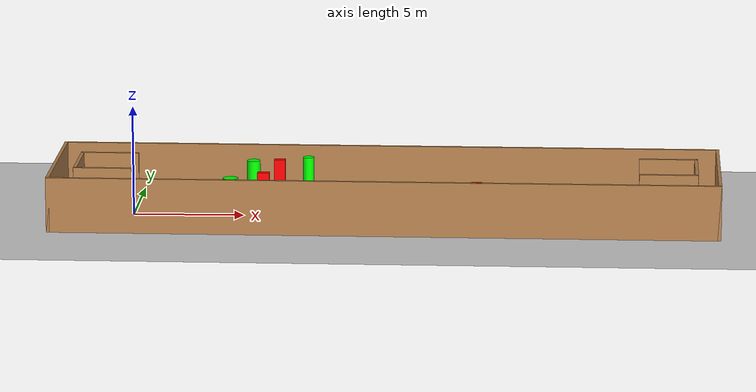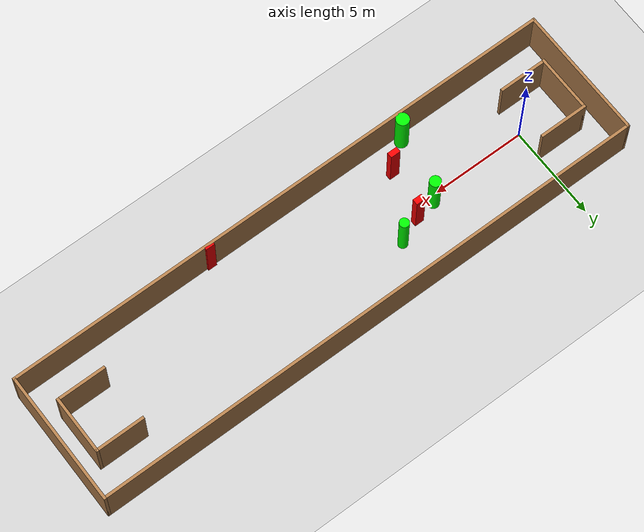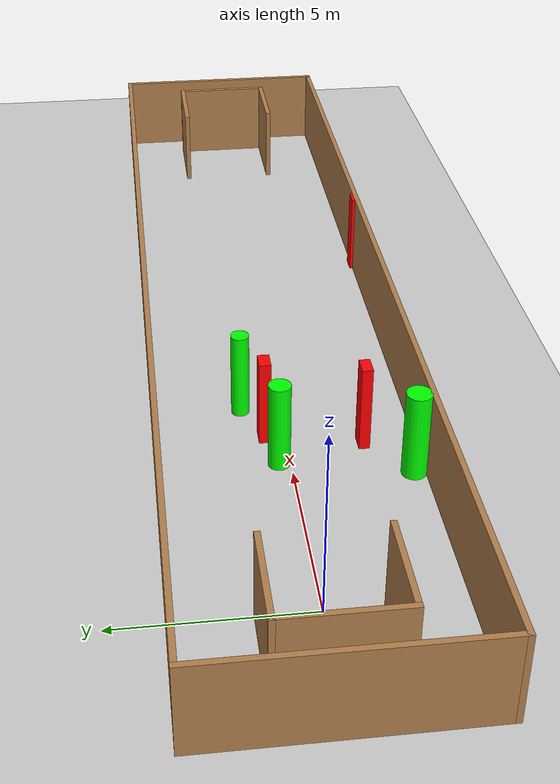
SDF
<sdf version="1.7">
 <world name="default">
  <light name="sun" type="directional">
   <pose>0 0 10 0 -0 0</pose>
   <diffuse>0.8 0.8 0.8 1</diffuse>
   <specular>0.2 0.2 0.2 1</specular>
   <attenuation>
    <range>1000</range>
    <constant>0.9</constant>
    <linear>0.01</linear>
    <quadratic>0.001</quadratic>
   </attenuation>
   <direction>-0.5 0.1 -0.9</direction>
   <spot><inner_angle>0</inner_angle><outer_angle>0</outer_angle><falloff>0</falloff></spot>
  </light>
  <model name="ground_plane">
   <static>1</static>
   <link name="link">
    <collision name="collision">
     <geometry><plane><normal>0 0 1</normal><size>100 100</size></plane></geometry>
     <surface>
      <contact><collide_bitmask>65535</collide_bitmask></contact>
      <friction><ode><mu>100</mu><mu2>50</mu2></ode></friction>
     </surface>
    </collision>
    <visual name="visual">
     <cast_shadows>0</cast_shadows>
     <geometry><plane><normal>0 0 1</normal><size>100 100</size></plane></geometry>
     <material>
      <script><uri>file://media/materials/scripts/gazebo.material</uri><name>Gazebo/Grey</name></script>
     </material>
    </visual>
   </link>
  </model>
  <gravity>0 0 -9.8</gravity>
  <magnetic_field>6e-06 2.3e-05 -4.2e-05</magnetic_field>
  <atmosphere type="adiabatic"/>
  <physics type="ode">
   <max_step_size>0.001</max_step_size>
   <real_time_factor>1</real_time_factor>
   <real_time_update_rate>1000</real_time_update_rate>
  </physics>
  <scene><ambient>0.4 0.4 0.4 1</ambient><background>0.7 0.7 0.7 1</background><shadows>1</shadows></scene>
  <spherical_coordinates>
   <surface_model>EARTH_WGS84</surface_model>
   <latitude_deg>0</latitude_deg>
   <longitude_deg>0</longitude_deg>
   <elevation>0</elevation>
   <heading_deg>0</heading_deg>
  </spherical_coordinates>
  <model name="my_base_walls">
   <link name="Wall_0">
    <collision name="Wall_0_Collision">
     <geometry><box><size>7.15 0.15 2.5</size></box></geometry>
     <pose>0 0 1.25 0 -0 0</pose>
    </collision>
    <visual name="Wall_0_Visual">
     <pose>0 0 1.25 0 -0 0</pose>
     <geometry><box><size>7.15 0.15 2.5</size></box></geometry>
     <material>
      <script><uri>file://media/materials/scripts/gazebo.material</uri><name>Gazebo/Wood</name></script>
      <ambient>1 1 1 1</ambient>
     </material>
     <meta><layer>0</layer></meta>
    </visual>
    <pose>-15 0 0 0 -0 1.5708</pose>
   </link>
   <link name="Wall_10">
    <collision name="Wall_10_Collision">
     <geometry><box><size>2.65 0.15 2.5</size></box></geometry>
     <pose>0 0 1.25 0 -0 0</pose>
    </collision>
    <visual name="Wall_10_Visual">
     <pose>0 0 1.25 0 -0 0</pose>
     <geometry><box><size>2.65 0.15 2.5</size></box></geometry>
     <material>
      <script><uri>file://media/materials/scripts/gazebo.material</uri><name>Gazebo/Wood</name></script>
      <ambient>1 1 1 1</ambient>
     </material>
     <meta><layer>0</layer></meta>
    </visual>
    <pose>-12.75 -1.5 0 0 -0 0</pose>
   </link>
   <link name="Wall_12">
    <collision name="Wall_12_Collision">
     <geometry><box><size>2.65 0.15 2.5</size></box></geometry>
     <pose>0 0 1.25 0 -0 0</pose>
    </collision>
    <visual name="Wall_12_Visual">
     <pose>0 0 1.25 0 -0 0</pose>
     <geometry><box><size>2.65 0.15 2.5</size></box></geometry>
     <material>
      <script><uri>file://media/materials/scripts/gazebo.material</uri><name>Gazebo/Wood</name></script>
      <ambient>1 1 1 1</ambient>
     </material>
     <meta><layer>0</layer></meta>
    </visual>
    <pose>-12.75 1.5 0 0 -0 0</pose>
   </link>
   <link name="Wall_14">
    <collision name="Wall_14_Collision">
     <geometry><box><size>3.15 0.15 2.5</size></box></geometry>
     <pose>0 0 1.25 0 -0 0</pose>
    </collision>
    <visual name="Wall_14_Visual">
     <pose>0 0 1.25 0 -0 0</pose>
     <geometry><box><size>3.15 0.15 2.5</size></box></geometry>
     <material>
      <script><uri>file://media/materials/scripts/gazebo.material</uri><name>Gazebo/Wood</name></script>
      <ambient>1 1 1 1</ambient>
     </material>
     <meta><layer>0</layer></meta>
    </visual>
    <pose>14 0 0 0 -0 -1.5708</pose>
   </link>
   <link name="Wall_15">
    <collision name="Wall_15_Collision">
     <geometry><box><size>2.65 0.15 2.5</size></box></geometry>
     <pose>0 0 1.25 0 -0 0</pose>
    </collision>
    <visual name="Wall_15_Visual">
     <pose>0 0 1.25 0 -0 0</pose>
     <geometry><box><size>2.65 0.15 2.5</size></box></geometry>
     <material>
      <script><uri>file://media/materials/scripts/gazebo.material</uri><name>Gazebo/Wood</name></script>
      <ambient>1 1 1 1</ambient>
     </material>
     <meta><layer>0</layer></meta>
    </visual>
    <pose>12.75 -1.5 0 0 -0 3.14159</pose>
   </link>
   <link name="Wall_17">
    <collision name="Wall_17_Collision">
     <geometry><box><size>2.65 0.15 2.5</size></box></geometry>
     <pose>0 0 1.25 0 -0 0</pose>
    </collision>
    <visual name="Wall_17_Visual">
     <pose>0 0 1.25 0 -0 0</pose>
     <geometry><box><size>2.65 0.15 2.5</size></box></geometry>
     <material>
      <script><uri>file://media/materials/scripts/gazebo.material</uri><name>Gazebo/Wood</name></script>
      <ambient>1 1 1 1</ambient>
     </material>
     <meta><layer>0</layer></meta>
    </visual>
    <pose>12.75 1.5 0 0 -0 3.14159</pose>
   </link>
   <link name="Wall_2">
    <collision name="Wall_2_Collision">
     <geometry><box><size>30.15 0.15 2.5</size></box></geometry>
     <pose>0 0 1.25 0 -0 0</pose>
    </collision>
    <visual name="Wall_2_Visual">
     <pose>0 0 1.25 0 -0 0</pose>
     <geometry><box><size>30.15 0.15 2.5</size></box></geometry>
     <material>
      <script><uri>file://media/materials/scripts/gazebo.material</uri><name>Gazebo/Wood</name></script>
      <ambient>1 1 1 1</ambient>
     </material>
     <meta><layer>0</layer></meta>
    </visual>
    <pose>-0 -3.5 0 0 -0 0</pose>
   </link>
   <link name="Wall_4">
    <collision name="Wall_4_Collision">
     <geometry><box><size>30.15 0.15 2.5</size></box></geometry>
     <pose>0 0 1.25 0 -0 0</pose>
    </collision>
    <visual name="Wall_4_Visual">
     <pose>0 0 1.25 0 -0 0</pose>
     <geometry><box><size>30.15 0.15 2.5</size></box></geometry>
     <material>
      <script><uri>file://media/materials/scripts/gazebo.material</uri><name>Gazebo/Wood</name></script>
      <ambient>1 1 1 1</ambient>
     </material>
     <meta><layer>0</layer></meta>
    </visual>
    <pose>-0 3.5 0 0 -0 0</pose>
   </link>
   <link name="Wall_6">
    <collision name="Wall_6_Collision">
     <geometry><box><size>7.15 0.15 2.5</size></box></geometry>
     <pose>0 0 1.25 0 -0 0</pose>
    </collision>
    <visual name="Wall_6_Visual">
     <pose>0 0 1.25 0 -0 0</pose>
     <geometry><box><size>7.15 0.15 2.5</size></box></geometry>
     <material>
      <script><uri>file://media/materials/scripts/gazebo.material</uri><name>Gazebo/Wood</name></script>
      <ambient>1 1 1 1</ambient>
     </material>
     <meta><layer>0</layer></meta>
    </visual>
    <pose>15 0 0 0 -0 -1.5708</pose>
   </link>
   <link name="Wall_9">
    <collision name="Wall_9_Collision">
     <geometry><box><size>3.15 0.15 2.5</size></box></geometry>
     <pose>0 0 1.25 0 -0 0</pose>
    </collision>
    <visual name="Wall_9_Visual">
     <pose>0 0 1.25 0 -0 0</pose>
     <geometry><box><size>3.15 0.15 2.5</size></box></geometry>
     <material>
      <script><uri>file://media/materials/scripts/gazebo.material</uri><name>Gazebo/Wood</name></script>
      <ambient>1 1 1 1</ambient>
     </material>
     <meta><layer>0</layer></meta>
    </visual>
    <pose>-14 0 0 0 -0 -1.5708</pose>
   </link>
   <static>1</static>
   <pose>11.5 0 0 0 -0 0</pose>
  </model>
  <model name="cylinder1">
   <static>1</static>
   <link name="link">
    <inertial>
     <mass>1</mass>
     <inertia><ixx>0.5</ixx><ixy>0</ixy><ixz>0</ixz><iyy>0.5</iyy><iyz>0</iyz><izz>1</izz></inertia>
    </inertial>
    <collision name="collision">
     <geometry><cylinder><radius>0.2515892728232476</radius><length>2.5</length></cylinder></geometry>
    </collision>
    <visual name="visual">
     <geometry><cylinder><radius>0.2515892728232476</radius><length>2.5</length></cylinder></geometry>
     <material>
      <ambient>0 1 0 1</ambient>
      <diffuse>0 1 0 1</diffuse>
      <specular>0.1 0.1 0.1 1</specular>
      <emissive>0 0 0 0</emissive>
     </material>
    </visual>
   </link>
   <pose>7.8817899787222725 1.0857085920677036 1.25 0 0 0</pose>
  </model>
  <model name="cylinder2">
   <static>1</static>
   <link name="link">
    <inertial>
     <mass>1</mass>
     <inertia><ixx>0.5</ixx><ixy>0</ixy><ixz>0</ixz><iyy>0.5</iyy><iyz>0</iyz><izz>1</izz></inertia>
    </inertial>
    <collision name="collision">
     <geometry><cylinder><radius>0.34279080779683946</radius><length>2.5</length></cylinder></geometry>
    </collision>
    <visual name="visual">
     <geometry><cylinder><radius>0.34279080779683946</radius><length>2.5</length></cylinder></geometry>
     <material>
      <ambient>0 1 0 1</ambient>
      <diffuse>0 1 0 1</diffuse>
      <specular>0.1 0.1 0.1 1</specular>
      <emissive>0 0 0 0</emissive>
     </material>
    </visual>
   </link>
   <pose>4.692212648698938 -3.129457896334621 1.25 0 0 0</pose>
  </model>
  <model name="cylinder3">
   <static>1</static>
   <link name="link">
    <inertial>
     <mass>1</mass>
     <inertia><ixx>0.5</ixx><ixy>0</ixy><ixz>0</ixz><iyy>0.5</iyy><iyz>0</iyz><izz>1</izz></inertia>
    </inertial>
    <collision name="collision">
     <geometry><cylinder><radius>0.29990594731175635</radius><length>2.5</length></cylinder></geometry>
    </collision>
    <visual name="visual">
     <geometry><cylinder><radius>0.29990594731175635</radius><length>2.5</length></cylinder></geometry>
     <material>
      <ambient>0 1 0 1</ambient>
      <diffuse>0 1 0 1</diffuse>
      <specular>0.1 0.1 0.1 1</specular>
      <emissive>0 0 0 0</emissive>
     </material>
    </visual>
   </link>
   <pose>5.4485059958390245 0.3081712984074878 1.25 0 0 0</pose>
  </model>
  <model name="box1">
   <static>1</static>
   <link name="link">
    <inertial>
     <mass>1</mass>
     <inertia><ixx>0.083</ixx><ixy>0</ixy><ixz>0</ixz><iyy>0.083</iyy><iyz>0</iyz><izz>0.083</izz></inertia>
    </inertial>
    <collision name="collision">
     <geometry><box><size>0.5377266509243775 0.29625244559002417 2.5</size></box></geometry>
    </collision>
    <visual name="visual">
     <geometry><box><size>0.5377266509243775 0.29625244559002417 2.5</size></box></geometry>
     <material>
      <ambient>1 0 0 1</ambient>
      <diffuse>1 0 0 1</diffuse>
      <specular>0.1 0.1 0.1 1</specular>
      <emissive>0 0 0 0</emissive>
     </material>
    </visual>
    <sensor name="my_contact" type="contact">
     <contact><collision>box_collision</collision><topic>__default_topic__</topic></contact>
    </sensor>
   </link>
   <pose>6.075389572141818 -2.024082945645014 1.25 0 0 0</pose>
  </model>
  <model name="box2">
   <static>1</static>
   <link name="link">
    <inertial>
     <mass>1</mass>
     <inertia><ixx>0.083</ixx><ixy>0</ixy><ixz>0</ixz><iyy>0.083</iyy><iyz>0</iyz><izz>0.083</izz></inertia>
    </inertial>
    <collision name="collision">
     <geometry><box><size>0.5011174894105372 0.3169174507293286 2.5</size></box></geometry>
    </collision>
    <visual name="visual">
     <geometry><box><size>0.5011174894105372 0.3169174507293286 2.5</size></box></geometry>
     <material>
      <ambient>1 0 0 1</ambient>
      <diffuse>1 0 0 1</diffuse>
      <specular>0.1 0.1 0.1 1</specular>
      <emissive>0 0 0 0</emissive>
     </material>
    </visual>
    <sensor name="my_contact" type="contact">
     <contact><collision>box_collision</collision><topic>__default_topic__</topic></contact>
    </sensor>
   </link>
   <pose>6.6154568256739505 0.5736289749069456 1.25 0 0 0</pose>
  </model>
  <model name="box3">
   <static>1</static>
   <link name="link">
    <inertial>
     <mass>1</mass>
     <inertia><ixx>0.083</ixx><ixy>0</ixy><ixz>0</ixz><iyy>0.083</iyy><iyz>0</iyz><izz>0.083</izz></inertia>
    </inertial>
    <collision name="collision">
     <geometry><box><size>0.48337848696495356 0.20255950173121226 2.5</size></box></geometry>
    </collision>
    <visual name="visual">
     <geometry><box><size>0.48337848696495356 0.20255950173121226 2.5</size></box></geometry>
     <material>
      <ambient>1 0 0 1</ambient>
      <diffuse>1 0 0 1</diffuse>
      <specular>0.1 0.1 0.1 1</specular>
      <emissive>0 0 0 0</emissive>
     </material>
    </visual>
    <sensor name="my_contact" type="contact">
     <contact><collision>box_collision</collision><topic>__default_topic__</topic></contact>
    </sensor>
   </link>
   <pose>15.699621454825467 -3.4355416185630823 1.25 0 0 0</pose>
  </model>
 </world>
</sdf>
